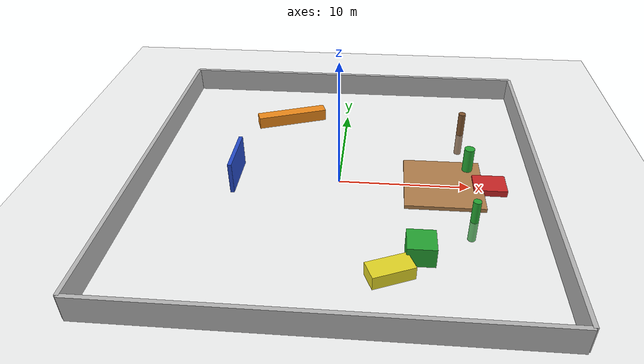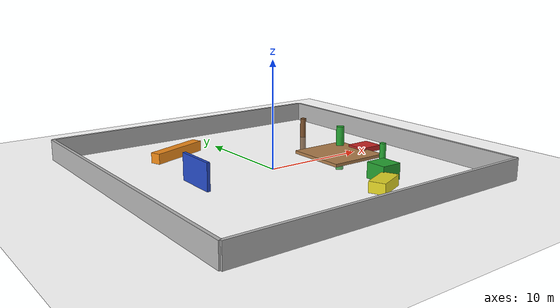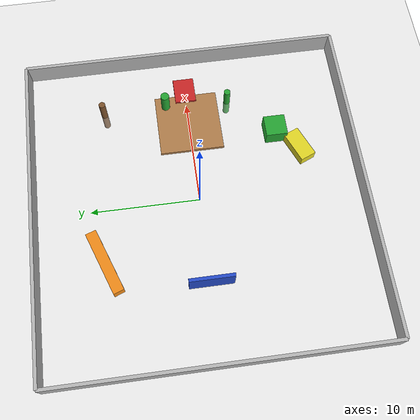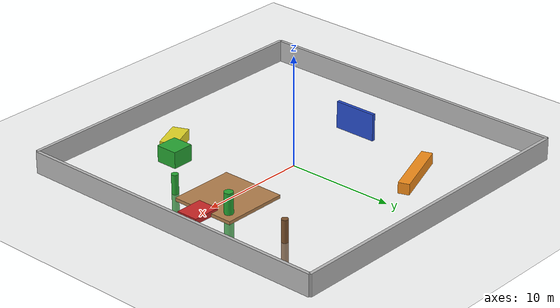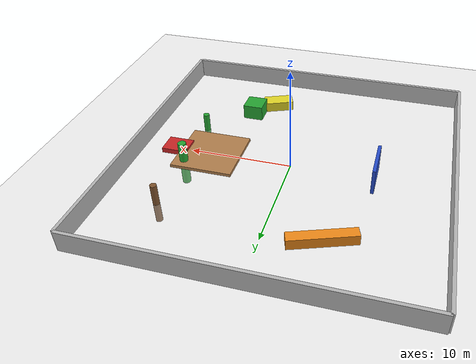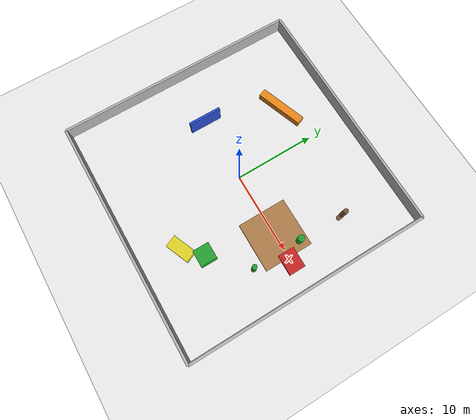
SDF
<sdf version="1.6">
 <world name="silvanus_training_ground">
  <include><uri>model://sun</uri></include>
  <include><uri>model://ground_plane</uri></include>
  <light name="arena_spot" type="spot">
   <pose>0 0 20 0 0 0</pose>
   <diffuse>0.6 0.6 0.55 1</diffuse>
   <specular>0.2 0.2 0.2 1</specular>
   <attenuation>
    <range>80</range>
    <constant>0.3</constant>
    <linear>0.01</linear>
    <quadratic>0.001</quadratic>
   </attenuation>
   <direction>0 0 -1</direction>
   <spot><inner_angle>0.5</inner_angle><outer_angle>0.9</outer_angle><falloff>0.6</falloff></spot>
  </light>
  <model name="perimeter_north_wall">
   <static>1</static>
   <pose>0 15 1.0 0 0 0</pose>
   <link name="link">
    <collision name="collision"><geometry><box><size>30 0.3 2.0</size></box></geometry></collision>
    <visual name="visual">
     <geometry><box><size>30 0.3 2.0</size></box></geometry>
     <material>
      <script><uri>file://media/materials/scripts/gazebo.material</uri><name>Gazebo/Stone</name></script>
     </material>
    </visual>
   </link>
  </model>
  <model name="perimeter_south_wall">
   <static>1</static>
   <pose>0 -15 1.0 0 0 0</pose>
   <link name="link">
    <collision name="collision"><geometry><box><size>30 0.3 2.0</size></box></geometry></collision>
    <visual name="visual">
     <geometry><box><size>30 0.3 2.0</size></box></geometry>
     <material>
      <script><uri>file://media/materials/scripts/gazebo.material</uri><name>Gazebo/Stone</name></script>
     </material>
    </visual>
   </link>
  </model>
  <model name="perimeter_east_wall">
   <static>1</static>
   <pose>15 0 1.0 0 0 0</pose>
   <link name="link">
    <collision name="collision"><geometry><box><size>0.3 30 2.0</size></box></geometry></collision>
    <visual name="visual">
     <geometry><box><size>0.3 30 2.0</size></box></geometry>
     <material>
      <script><uri>file://media/materials/scripts/gazebo.material</uri><name>Gazebo/Stone</name></script>
     </material>
    </visual>
   </link>
  </model>
  <model name="perimeter_west_wall">
   <static>1</static>
   <pose>-15 0 1.0 0 0 0</pose>
   <link name="link">
    <collision name="collision"><geometry><box><size>0.3 30 2.0</size></box></geometry></collision>
    <visual name="visual">
     <geometry><box><size>0.3 30 2.0</size></box></geometry>
     <material>
      <script><uri>file://media/materials/scripts/gazebo.material</uri><name>Gazebo/Stone</name></script>
     </material>
    </visual>
   </link>
  </model>
  <model name="central_platform">
   <static>1</static>
   <pose>8 0 0.15 0 0 0</pose>
   <link name="link">
    <collision name="collision"><geometry><box><size>6 6 0.3</size></box></geometry></collision>
    <visual name="visual">
     <geometry><box><size>6 6 0.3</size></box></geometry>
     <material>
      <script><uri>file://media/materials/scripts/gazebo.material</uri><name>Gazebo/WoodFloor</name></script>
     </material>
    </visual>
   </link>
  </model>
  <model name="platform_ramp">
   <static>1</static>
   <pose>11.5 0 0.25 0 0 0</pose>
   <link name="link">
    <collision name="collision"><geometry><box><size>2.5 2 0.5</size></box></geometry></collision>
    <visual name="visual">
     <geometry><box><size>2.5 2 0.5</size></box></geometry>
     <material>
      <script><uri>file://media/materials/scripts/gazebo.material</uri><name>Gazebo/Red</name></script>
     </material>
    </visual>
   </link>
  </model>
  <model name="north_barrier_cluster">
   <static>1</static>
   <pose>-5 9 0.5 0 0 0.35</pose>
   <link name="link">
    <collision name="collision"><geometry><box><size>6 1 1.0</size></box></geometry></collision>
    <visual name="visual">
     <geometry><box><size>6 1 1.0</size></box></geometry>
     <material>
      <script><uri>file://media/materials/scripts/gazebo.material</uri><name>Gazebo/Orange</name></script>
     </material>
    </visual>
   </link>
  </model>
  <model name="south_box_cluster">
   <static>1</static>
   <pose>6 -8 0.75 0 0 0</pose>
   <link name="box1">
    <collision name="collision"><geometry><box><size>2 2 1.5</size></box></geometry></collision>
    <visual name="visual">
     <geometry><box><size>2 2 1.5</size></box></geometry>
     <material>
      <script><uri>file://media/materials/scripts/gazebo.material</uri><name>Gazebo/Green</name></script>
     </material>
    </visual>
   </link>
  </model>
  <model name="south_box_cluster_two">
   <static>1</static>
   <pose>4 -10 0.5 0 0 0.4</pose>
   <link name="box">
    <collision name="collision"><geometry><box><size>3 1.5 1.0</size></box></geometry></collision>
    <visual name="visual">
     <geometry><box><size>3 1.5 1.0</size></box></geometry>
     <material>
      <script><uri>file://media/materials/scripts/gazebo.material</uri><name>Gazebo/Yellow</name></script>
     </material>
    </visual>
   </link>
  </model>
  <model name="tree_line_east">
   <static>1</static>
   <pose>10 8 0 0 0 0</pose>
   <link name="tree1">
    <collision name="collision">
     <geometry><cylinder><radius>0.3</radius><length>4</length></cylinder></geometry>
    </collision>
    <visual name="visual">
     <geometry><cylinder><radius>0.3</radius><length>4</length></cylinder></geometry>
     <material>
      <script><uri>file://media/materials/scripts/gazebo.material</uri><name>Gazebo/Brown</name></script>
     </material>
    </visual>
   </link>
  </model>
  <model name="tree_line_east_two">
   <static>1</static>
   <pose>10 2 0 0 0 0.5</pose>
   <link name="tree2">
    <collision name="collision">
     <geometry><cylinder><radius>0.4</radius><length>4.5</length></cylinder></geometry>
    </collision>
    <visual name="visual">
     <geometry><cylinder><radius>0.4</radius><length>4.5</length></cylinder></geometry>
     <material>
      <script><uri>file://media/materials/scripts/gazebo.material</uri><name>Gazebo/Green</name></script>
     </material>
    </visual>
   </link>
  </model>
  <model name="tree_line_east_three">
   <static>1</static>
   <pose>10 -4 0 0 0 -0.3</pose>
   <link name="tree3">
    <collision name="collision">
     <geometry><cylinder><radius>0.3</radius><length>3.5</length></cylinder></geometry>
    </collision>
    <visual name="visual">
     <geometry><cylinder><radius>0.3</radius><length>3.5</length></cylinder></geometry>
     <material>
      <script><uri>file://media/materials/scripts/gazebo.material</uri><name>Gazebo/Green</name></script>
     </material>
    </visual>
   </link>
  </model>
  <model name="navigation_gate">
   <static>1</static>
   <pose>-8 0 1.25 0 0 0</pose>
   <link name="link">
    <collision name="collision"><geometry><box><size>0.3 4 2.5</size></box></geometry></collision>
    <visual name="visual">
     <geometry><box><size>0.3 4 2.5</size></box></geometry>
     <material>
      <script><uri>file://media/materials/scripts/gazebo.material</uri><name>Gazebo/Blue</name></script>
     </material>
    </visual>
   </link>
  </model>
 </world>
</sdf>
